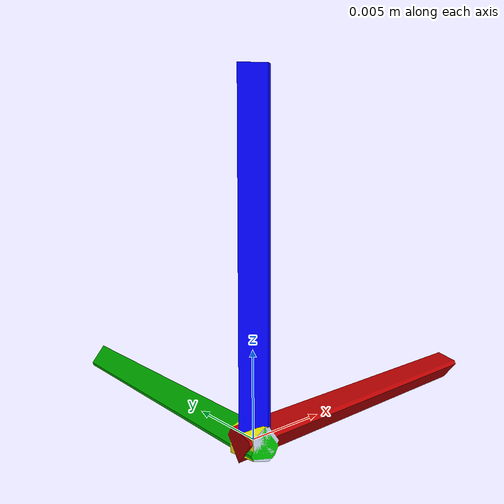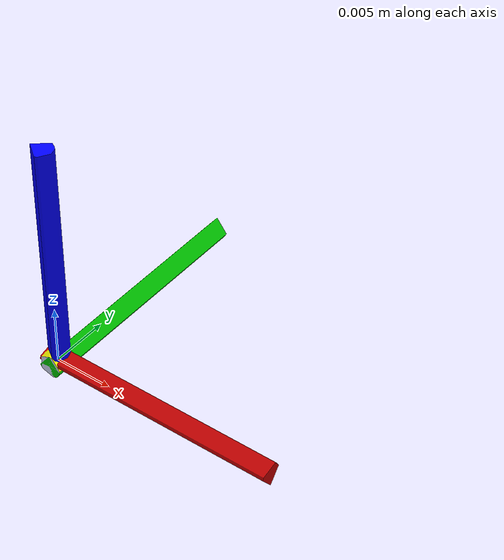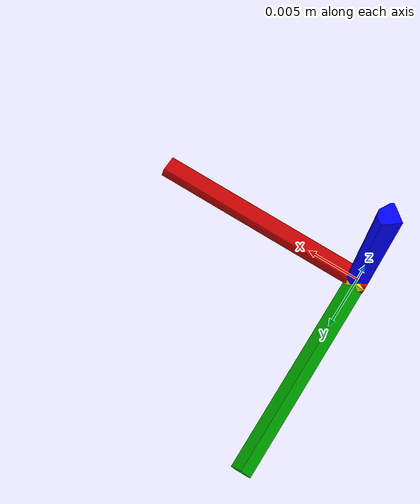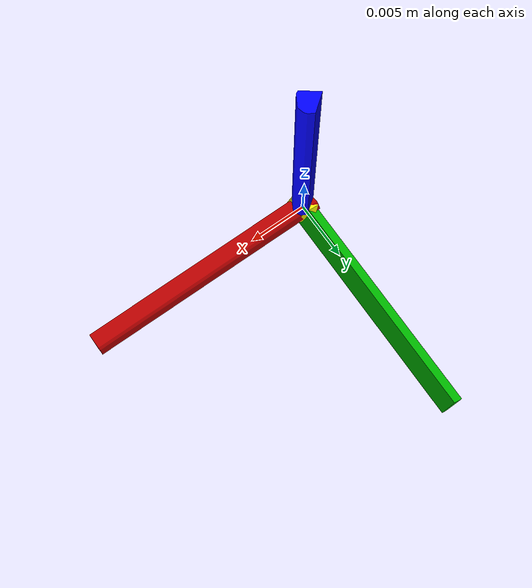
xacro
<?xml version="1.0"?>
<robot xmlns:xacro="http://www.ros.org/wiki/xacro" name="axis.urdf.xacro">
  <xacro:arg name="origin_x" default="0"/>
  <xacro:arg name="origin_y" default="0"/>
  <xacro:arg name="origin_z" default="0"/>
  <xacro:arg name="name" default="target"/>

  <gazebo reference="world">
  </gazebo>

    <!-- First (shoulder) element of the arm. Fixed to its parent. -->

<gazebo reference="$(arg name)/base_link">
    <static>true</static>
    <turnGravityOff>true</turnGravityOff>
</gazebo>

  <link name="$(arg name)/base_link">
    <inertial>
      <origin xyz="0 0 0" rpy="0 0 0"/>
      <mass value="1" />
      <inertia ixx="1" ixy="0" ixz="0" iyy="1" iyz="0" izz="1"/>
    </inertial>
    <visual>
      <origin xyz="0 0 0" rpy="0 0 0"/>
      <geometry>
        <mesh filename="package://surgical_task/models/axis.dae" scale="2 2 2"/>
      </geometry>
    </visual>
  </link>

</robot>
